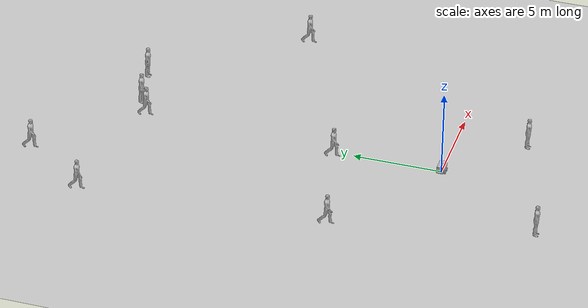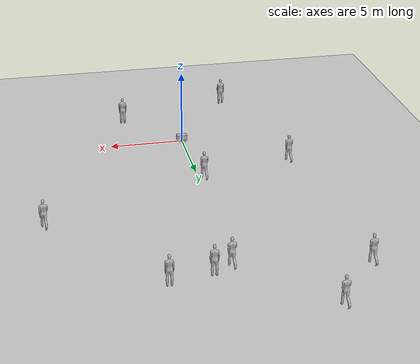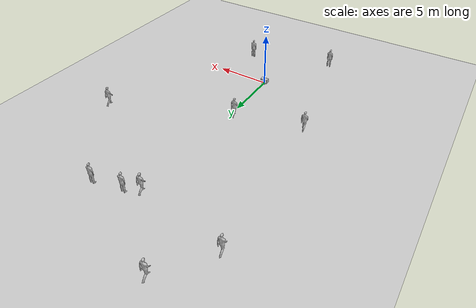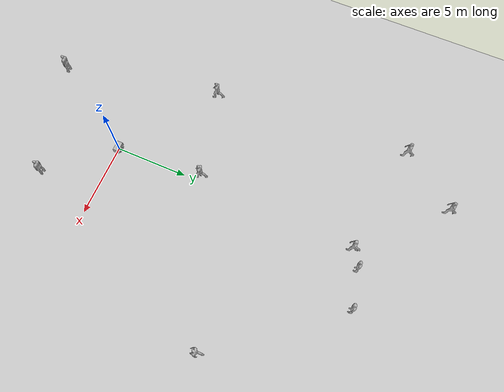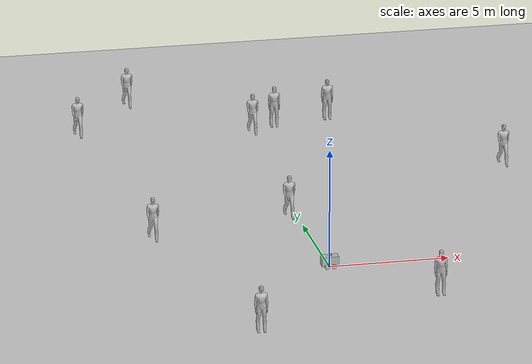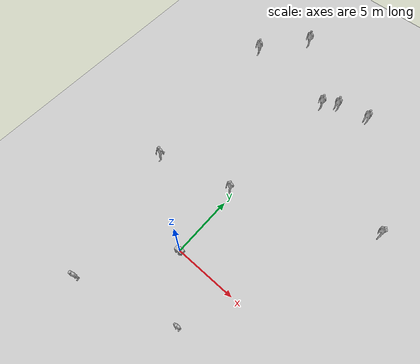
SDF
<sdf version="1.7">
 <world name="default">
  <gravity>0 0 -9.8</gravity>
  <physics name="default_physics" default="0" type="ode">
   <max_step_size>0.001</max_step_size>
   <real_time_factor>1</real_time_factor>
   <real_time_update_rate>1000</real_time_update_rate>
  </physics>
  <magnetic_field>6e-06 2.3e-05 -4.2e-05</magnetic_field>
  <atmosphere type="adiabatic"/>
  <scene><ambient>0.4 0.4 0.4 1</ambient><background>0.7 0.7 0.7 1</background><shadows>1</shadows></scene>
  <audio><device>default</device></audio>
  <spherical_coordinates>
   <surface_model>EARTH_WGS84</surface_model>
   <latitude_deg>0</latitude_deg>
   <longitude_deg>0</longitude_deg>
   <elevation>0</elevation>
   <heading_deg>0</heading_deg>
  </spherical_coordinates>
  <model name="warehouse">
   <pose>-3.23852 -1.21297 -0.460037 0 -0 0</pose>
   <link name="warehouse_base">
    <collision name="warehouse_collision">
     <geometry>
      <mesh>
       <scale>1 1 1</scale>
       <uri>/home/bo/amr_ws/src/my_first_bot/models/Warehouse/meshes/warehouse_colision.stl</uri>
      </mesh>
     </geometry>
    </collision>
    <visual name="warehouse_visual">
     <geometry>
      <mesh>
       <scale>1 1 1</scale>
       <uri>/home/bo/amr_ws/src/my_first_bot/models/Warehouse/meshes/warehouse.dae</uri>
      </mesh>
     </geometry>
    </visual>
   </link>
   <static>1</static>
  </model>
  <model name="ground_plane">
   <static>1</static>
   <link name="link">
    <collision name="collision">
     <geometry><plane><normal>0 0 1</normal><size>100 100</size></plane></geometry>
     <surface><friction><ode><mu>100</mu><mu2>50</mu2></ode></friction></surface>
    </collision>
    <visual name="visual">
     <cast_shadows>0</cast_shadows>
     <geometry><plane><normal>0 0 1</normal><size>100 100</size></plane></geometry>
     <material>
      <script><uri>file://media/materials/scripts/gazebo.material</uri><name>Gazebo/Grey</name></script>
     </material>
    </visual>
   </link>
   <pose>-2.36225 2.26229 0 0 -0 0</pose>
  </model>
  <model name="person_walking">
   <link name="link">
    <inertial>
     <pose>0 0 0.95 0 -0 0</pose>
     <mass>80</mass>
     <inertia><ixx>27.82</ixx><ixy>0</ixy><ixz>0</ixz><iyy>24.88</iyy><iyz>0</iyz><izz>4.57</izz></inertia>
    </inertial>
    <collision name="bottom">
     <pose>0 0 0.01 0 -0 0</pose>
     <geometry><box><size>0.35 0.75 0.02</size></box></geometry>
    </collision>
    <collision name="person">
     <pose>0 0 -0.02 0 -0 0</pose>
     <geometry><mesh><uri>model://person_walking/meshes/walking.dae</uri></mesh></geometry>
    </collision>
    <visual name="visual">
     <pose>0 0 -0.02 0 -0 0</pose>
     <geometry><mesh><uri>model://person_walking/meshes/walking.dae</uri></mesh></geometry>
    </visual>
   </link>
   <pose>0.373383 17.2784 -1e-06 -2e-06 -1e-06 0.000185</pose>
  </model>
  <model name="person_standing">
   <link name="link">
    <inertial>
     <pose>0 -0.1 0.95 0 -0 0</pose>
     <mass>80</mass>
     <inertia><ixx>24.88</ixx><ixy>0</ixy><ixz>0</ixz><iyy>25.73</iyy><iyz>0</iyz><izz>2.48</izz></inertia>
    </inertial>
    <collision name="bottom">
     <pose>0 -0.1 0.01 0 -0 0</pose>
     <geometry><box><size>0.5 0.35 0.02</size></box></geometry>
    </collision>
    <collision name="person">
     <pose>0 0 0.02 0.04 -0 0</pose>
     <geometry><mesh><uri>model://person_standing/meshes/standing.dae</uri></mesh></geometry>
    </collision>
    <visual name="visual">
     <pose>0 0 0.02 0.04 -0 0</pose>
     <geometry><mesh><uri>model://person_standing/meshes/standing.dae</uri></mesh></geometry>
    </visual>
   </link>
   <pose>1.51419 18.0112 -0 0 1e-06 -0.000335</pose>
  </model>
  <model name="person_standing_0">
   <link name="link">
    <inertial>
     <pose>0 -0.1 0.95 0 -0 0</pose>
     <mass>80</mass>
     <inertia><ixx>24.88</ixx><ixy>0</ixy><ixz>0</ixz><iyy>25.73</iyy><iyz>0</iyz><izz>2.48</izz></inertia>
    </inertial>
    <collision name="bottom">
     <pose>0 -0.1 0.01 0 -0 0</pose>
     <geometry><box><size>0.5 0.35 0.02</size></box></geometry>
    </collision>
    <collision name="person">
     <pose>0 0 0.02 0.04 -0 0</pose>
     <geometry><mesh><uri>model://person_standing/meshes/standing.dae</uri></mesh></geometry>
    </collision>
    <visual name="visual">
     <pose>0 0 0.02 0.04 -0 0</pose>
     <geometry><mesh><uri>model://person_standing/meshes/standing.dae</uri></mesh></geometry>
    </visual>
   </link>
   <pose>4.10861 18.5529 -0 1e-06 1e-06 -0.000124</pose>
  </model>
  <model name="person_walking_0">
   <link name="link">
    <inertial>
     <pose>0 0 0.95 0 -0 0</pose>
     <mass>80</mass>
     <inertia><ixx>27.82</ixx><ixy>0</ixy><ixz>0</ixz><iyy>24.88</iyy><iyz>0</iyz><izz>4.57</izz></inertia>
    </inertial>
    <collision name="bottom">
     <pose>0 0 0.01 0 -0 0</pose>
     <geometry><box><size>0.35 0.75 0.02</size></box></geometry>
    </collision>
    <collision name="person">
     <pose>0 0 -0.02 0 -0 0</pose>
     <geometry><mesh><uri>model://person_walking/meshes/walking.dae</uri></mesh></geometry>
    </collision>
    <visual name="visual">
     <pose>0 0 -0.02 0 -0 0</pose>
     <geometry><mesh><uri>model://person_walking/meshes/walking.dae</uri></mesh></geometry>
    </visual>
   </link>
   <pose>-7.42575 18.4808 0 -1e-06 -1e-06 0.000661</pose>
  </model>
  <model name="person_walking_1">
   <link name="link">
    <inertial>
     <pose>0 0 0.95 0 -0 0</pose>
     <mass>80</mass>
     <inertia><ixx>27.82</ixx><ixy>0</ixy><ixz>0</ixz><iyy>24.88</iyy><iyz>0</iyz><izz>4.57</izz></inertia>
    </inertial>
    <collision name="bottom">
     <pose>0 0 0.01 0 -0 0</pose>
     <geometry><box><size>0.35 0.75 0.02</size></box></geometry>
    </collision>
    <collision name="person">
     <pose>0 0 -0.02 0 -0 0</pose>
     <geometry><mesh><uri>model://person_walking/meshes/walking.dae</uri></mesh></geometry>
    </collision>
    <visual name="visual">
     <pose>0 0 -0.02 0 -0 0</pose>
     <geometry><mesh><uri>model://person_walking/meshes/walking.dae</uri></mesh></geometry>
    </visual>
   </link>
   <pose>-0.354293 6.10585 -1e-06 2e-06 -1e-06 0.00179</pose>
  </model>
  <model name="person_standing_1">
   <link name="link">
    <inertial>
     <pose>0 -0.1 0.95 0 -0 0</pose>
     <mass>80</mass>
     <inertia><ixx>24.88</ixx><ixy>0</ixy><ixz>0</ixz><iyy>25.73</iyy><iyz>0</iyz><izz>2.48</izz></inertia>
    </inertial>
    <collision name="bottom">
     <pose>0 -0.1 0.01 0 -0 0</pose>
     <geometry><box><size>0.5 0.35 0.02</size></box></geometry>
    </collision>
    <collision name="person">
     <pose>0 0 0.02 0.04 -0 0</pose>
     <geometry><mesh><uri>model://person_standing/meshes/standing.dae</uri></mesh></geometry>
    </collision>
    <visual name="visual">
     <pose>0 0 0.02 0.04 -0 0</pose>
     <geometry><mesh><uri>model://person_standing/meshes/standing.dae</uri></mesh></geometry>
    </visual>
   </link>
   <pose>-4.13513 -6.19495 -0 -1e-06 -1e-06 -0.002343</pose>
  </model>
  <model name="person_walking_2">
   <link name="link">
    <inertial>
     <pose>0 0 0.95 0 -0 0</pose>
     <mass>80</mass>
     <inertia><ixx>27.82</ixx><ixy>0</ixy><ixz>0</ixz><iyy>24.88</iyy><iyz>0</iyz><izz>4.57</izz></inertia>
    </inertial>
    <collision name="bottom">
     <pose>0 0 0.01 0 -0 0</pose>
     <geometry><box><size>0.35 0.75 0.02</size></box></geometry>
    </collision>
    <collision name="person">
     <pose>0 0 -0.02 0 -0 0</pose>
     <geometry><mesh><uri>model://person_walking/meshes/walking.dae</uri></mesh></geometry>
    </collision>
    <visual name="visual">
     <pose>0 0 -0.02 0 -0 0</pose>
     <geometry><mesh><uri>model://person_walking/meshes/walking.dae</uri></mesh></geometry>
    </visual>
   </link>
   <pose>-6.44337 4.65074 -1e-06 2e-06 -1e-06 0.000751</pose>
  </model>
  <model name="person_standing_2">
   <link name="link">
    <inertial>
     <pose>0 -0.1 0.95 0 -0 0</pose>
     <mass>80</mass>
     <inertia><ixx>24.88</ixx><ixy>0</ixy><ixz>0</ixz><iyy>25.73</iyy><iyz>0</iyz><izz>2.48</izz></inertia>
    </inertial>
    <collision name="bottom">
     <pose>0 -0.1 0.01 0 -0 0</pose>
     <geometry><box><size>0.5 0.35 0.02</size></box></geometry>
    </collision>
    <collision name="person">
     <pose>0 0 0.02 0.04 -0 0</pose>
     <geometry><mesh><uri>model://person_standing/meshes/standing.dae</uri></mesh></geometry>
    </collision>
    <visual name="visual">
     <pose>0 0 0.02 0.04 -0 0</pose>
     <geometry><mesh><uri>model://person_standing/meshes/standing.dae</uri></mesh></geometry>
    </visual>
   </link>
   <pose>3.63065 -3.8763 -0 1e-06 1e-06 0.000999</pose>
  </model>
  <model name="person_walking_3">
   <link name="link">
    <inertial>
     <pose>0 0 0.95 0 -0 0</pose>
     <mass>80</mass>
     <inertia><ixx>27.82</ixx><ixy>0</ixy><ixz>0</ixz><iyy>24.88</iyy><iyz>0</iyz><izz>4.57</izz></inertia>
    </inertial>
    <collision name="bottom">
     <pose>0 0 0.01 0 -0 0</pose>
     <geometry><box><size>0.35 0.75 0.02</size></box></geometry>
    </collision>
    <collision name="person">
     <pose>0 0 -0.02 0 -0 0</pose>
     <geometry><mesh><uri>model://person_walking/meshes/walking.dae</uri></mesh></geometry>
    </collision>
    <visual name="visual">
     <pose>0 0 -0.02 0 -0 0</pose>
     <geometry><mesh><uri>model://person_walking/meshes/walking.dae</uri></mesh></geometry>
    </visual>
   </link>
   <pose>10.2945 10.7131 0 1e-06 -0 0.000876</pose>
  </model>
  <model name="person_walking_4">
   <link name="link">
    <inertial>
     <pose>0 0 0.95 0 -0 0</pose>
     <mass>80</mass>
     <inertia><ixx>27.82</ixx><ixy>0</ixy><ixz>0</ixz><iyy>24.88</iyy><iyz>0</iyz><izz>4.57</izz></inertia>
    </inertial>
    <collision name="bottom">
     <pose>0 0 0.01 0 -0 0</pose>
     <geometry><box><size>0.35 0.75 0.02</size></box></geometry>
    </collision>
    <collision name="person">
     <pose>0 0 -0.02 0 -0 0</pose>
     <geometry><mesh><uri>model://person_walking/meshes/walking.dae</uri></mesh></geometry>
    </collision>
    <visual name="visual">
     <pose>0 0 -0.02 0 -0 0</pose>
     <geometry><mesh><uri>model://person_walking/meshes/walking.dae</uri></mesh></geometry>
    </visual>
   </link>
   <pose>-4.53788 22.2873 -1e-06 2e-06 1e-06 -0.002631</pose>
  </model>
  <light name="sun" type="directional">
   <pose>8.50524 13.8183 10 0 -0 0</pose>
   <diffuse>0.8 0.8 0.8 1</diffuse>
   <specular>0.2 0.2 0.2 1</specular>
   <attenuation>
    <range>1000</range>
    <constant>0.9</constant>
    <linear>0.01</linear>
    <quadratic>0.001</quadratic>
   </attenuation>
   <direction>-0.5 0.1 -0.9</direction>
   <spot><inner_angle>0</inner_angle><outer_angle>0</outer_angle><falloff>0</falloff></spot>
  </light>
  <model name="my_robot">
   <link name="base_footprint">
    <inertial>
     <pose>0 0 0.305366 0 -0 0</pose>
     <mass>6.15</mass>
     <inertia><ixx>0.167483</ixx><ixy>0</ixy><ixz>0</ixz><iyy>0.167483</iyy><iyz>0</iyz><izz>0.1604</izz></inertia>
    </inertial>
    <collision name="base_footprint_fixed_joint_lump__base_link_collision">
     <pose>0 0 0.3 0 -0 0</pose>
     <geometry><box><size>0.4 0.4 0.4</size></box></geometry>
    </collision>
    <collision name="base_footprint_fixed_joint_lump__lidar_link_collision_1">
     <pose>0 0 0.52 0 -0 0</pose>
     <geometry><sphere><radius>0.08</radius></sphere></geometry>
    </collision>
    <visual name="base_footprint_fixed_joint_lump__base_link_visual">
     <pose>0 0 0.3 0 -0 0</pose>
     <geometry><box><size>0.7 0.4 0.4</size></box></geometry>
    </visual>
    <visual name="base_footprint_fixed_joint_lump__lidar_link_visual_1">
     <pose>0 0 0.52 0 -0 0</pose>
     <geometry><sphere><radius>0.08</radius></sphere></geometry>
     <material>
      <script><name>Gazebo/Black</name><uri>file://media/materials/scripts/gazebo.material</uri></script>
     </material>
    </visual>
    <sensor name="imu_sensor" type="imu">
     <always_on>1</always_on>
     <update_rate>100</update_rate>
     <visualize>0</visualize>
     <plugin name="imu_plugin" filename="libgazebo_ros_imu_sensor.so">
      <ros><remapping>~/out:=imu/data</remapping></ros>
      <initial_orientation_as_reference>0</initial_orientation_as_reference>
     </plugin>
     <pose>0 0 0.3 0 -0 0</pose>
    </sensor>
    <sensor name="lidar_3d_sensor" type="gpu_ray">
     <visualize>0</visualize>
     <update_rate>10</update_rate>
     <ray>
      <scan>
       <horizontal>
        <samples>720</samples>
        <resolution>1</resolution>
        <min_angle>-3.14159</min_angle>
        <max_angle>3.14159</max_angle>
       </horizontal>
       <vertical>
        <samples>64</samples>
        <resolution>1</resolution>
        <min_angle>-0.523599</min_angle>
        <max_angle>0.785398</max_angle>
       </vertical>
      </scan>
      <range><min>0.4</min><max>12</max><resolution>0.02</resolution></range>
      <noise><type>gaussian</type><mean>0</mean><stddev>0.01</stddev></noise>
     </ray>
     <plugin name="gazebo_ros_lidar_3d" filename="libgazebo_ros_ray_sensor.so">
      <ros><remapping>~/out:=/points</remapping></ros>
      <output_type>sensor_msgs/PointCloud2</output_type>
      <frame_name>lidar_link</frame_name>
     </plugin>
     <pose>0 0 0.52 0 -0 0</pose>
    </sensor>
   </link>
   <joint name="front_left_wheel_joint" type="revolute">
    <pose relative_to="base_footprint">0.15 0.235 0.1 0 -0 0</pose>
    <parent>base_footprint</parent>
    <child>front_left_wheel</child>
    <axis>
     <xyz>0 1 0</xyz>
     <limit><lower>-1e+16</lower><upper>1e+16</upper></limit>
     <dynamics>
      <damping>0.01</damping>
      <friction>0</friction>
      <spring_reference>0</spring_reference>
      <spring_stiffness>0</spring_stiffness>
     </dynamics>
    </axis>
   </joint>
   <link name="front_left_wheel">
    <pose relative_to="front_left_wheel_joint">0 0 0 0 -0 0</pose>
    <inertial>
     <mass>0.5</mass>
     <inertia>
      <ixx>0.00135417</ixx>
      <ixy>0</ixy>
      <ixz>0</ixz>
      <iyy>0.00135417</iyy>
      <iyz>0</iyz>
      <izz>0.0025</izz>
     </inertia>
    </inertial>
    <collision name="front_left_wheel_collision">
     <pose>0 0 0 1.5708 -0 0</pose>
     <geometry><cylinder><length>0.05</length><radius>0.1</radius></cylinder></geometry>
     <surface>
      <contact><ode><kp>100000</kp><kd>50</kd><max_vel>0.1</max_vel><min_depth>0.001</min_depth></ode></contact>
      <friction><ode><mu>0.05</mu><mu2>0.05</mu2></ode></friction>
     </surface>
    </collision>
    <visual name="front_left_wheel_visual">
     <pose>0 0 0 1.5708 -0 0</pose>
     <geometry><cylinder><length>0.05</length><radius>0.1</radius></cylinder></geometry>
    </visual>
   </link>
   <joint name="front_right_wheel_joint" type="revolute">
    <pose relative_to="base_footprint">0.15 -0.235 0.1 0 -0 0</pose>
    <parent>base_footprint</parent>
    <child>front_right_wheel</child>
    <axis>
     <xyz>0 1 0</xyz>
     <limit><lower>-1e+16</lower><upper>1e+16</upper></limit>
     <dynamics>
      <damping>0.01</damping>
      <friction>0</friction>
      <spring_reference>0</spring_reference>
      <spring_stiffness>0</spring_stiffness>
     </dynamics>
    </axis>
   </joint>
   <link name="front_right_wheel">
    <pose relative_to="front_right_wheel_joint">0 0 0 0 -0 0</pose>
    <inertial>
     <mass>0.5</mass>
     <inertia>
      <ixx>0.00135417</ixx>
      <ixy>0</ixy>
      <ixz>0</ixz>
      <iyy>0.00135417</iyy>
      <iyz>0</iyz>
      <izz>0.0025</izz>
     </inertia>
    </inertial>
    <collision name="front_right_wheel_collision">
     <pose>0 0 0 1.5708 -0 0</pose>
     <geometry><cylinder><length>0.05</length><radius>0.1</radius></cylinder></geometry>
     <surface>
      <contact><ode><kp>100000</kp><kd>50</kd><max_vel>0.1</max_vel><min_depth>0.001</min_depth></ode></contact>
      <friction><ode><mu>0.05</mu><mu2>0.05</mu2></ode></friction>
     </surface>
    </collision>
    <visual name="front_right_wheel_visual">
     <pose>0 0 0 1.5708 -0 0</pose>
     <geometry><cylinder><length>0.05</length><radius>0.1</radius></cylinder></geometry>
    </visual>
   </link>
   <joint name="rear_left_wheel_joint" type="revolute">
    <pose relative_to="base_footprint">-0.15 0.235 0.1 0 -0 0</pose>
    <parent>base_footprint</parent>
    <child>rear_left_wheel</child>
    <axis>
     <xyz>0 1 0</xyz>
     <limit><lower>-1e+16</lower><upper>1e+16</upper></limit>
     <dynamics>
      <damping>0.1</damping>
      <friction>0.01</friction>
      <spring_reference>0</spring_reference>
      <spring_stiffness>0</spring_stiffness>
     </dynamics>
    </axis>
   </joint>
   <link name="rear_left_wheel">
    <pose relative_to="rear_left_wheel_joint">0 0 0 0 -0 0</pose>
    <inertial>
     <mass>0.5</mass>
     <inertia>
      <ixx>0.00135417</ixx>
      <ixy>0</ixy>
      <ixz>0</ixz>
      <iyy>0.00135417</iyy>
      <iyz>0</iyz>
      <izz>0.0025</izz>
     </inertia>
    </inertial>
    <collision name="rear_left_wheel_collision">
     <pose>0 0 0 1.5708 -0 0</pose>
     <geometry><cylinder><length>0.05</length><radius>0.1</radius></cylinder></geometry>
     <surface>
      <contact><ode><kp>100000</kp><kd>100</kd><max_vel>0.1</max_vel><min_depth>0.001</min_depth></ode></contact>
      <friction><ode><mu>2</mu><mu2>2</mu2></ode></friction>
     </surface>
    </collision>
    <visual name="rear_left_wheel_visual">
     <pose>0 0 0 1.5708 -0 0</pose>
     <geometry><cylinder><length>0.05</length><radius>0.1</radius></cylinder></geometry>
    </visual>
   </link>
   <joint name="rear_right_wheel_joint" type="revolute">
    <pose relative_to="base_footprint">-0.15 -0.235 0.1 0 -0 0</pose>
    <parent>base_footprint</parent>
    <child>rear_right_wheel</child>
    <axis>
     <xyz>0 1 0</xyz>
     <limit><lower>-1e+16</lower><upper>1e+16</upper></limit>
     <dynamics>
      <damping>0.1</damping>
      <friction>0.1</friction>
      <spring_reference>0</spring_reference>
      <spring_stiffness>0</spring_stiffness>
     </dynamics>
    </axis>
   </joint>
   <link name="rear_right_wheel">
    <pose relative_to="rear_right_wheel_joint">0 0 0 0 -0 0</pose>
    <inertial>
     <mass>0.5</mass>
     <inertia>
      <ixx>0.00135417</ixx>
      <ixy>0</ixy>
      <ixz>0</ixz>
      <iyy>0.00135417</iyy>
      <iyz>0</iyz>
      <izz>0.0025</izz>
     </inertia>
    </inertial>
    <collision name="rear_right_wheel_collision">
     <pose>0 0 0 1.5708 -0 0</pose>
     <geometry><cylinder><length>0.05</length><radius>0.1</radius></cylinder></geometry>
     <surface>
      <contact><ode><kp>100000</kp><kd>100</kd><max_vel>0.1</max_vel><min_depth>0.001</min_depth></ode></contact>
      <friction><ode><mu>2</mu><mu2>2</mu2></ode></friction>
     </surface>
    </collision>
    <visual name="rear_right_wheel_visual">
     <pose>0 0 0 1.5708 -0 0</pose>
     <geometry><cylinder><length>0.05</length><radius>0.1</radius></cylinder></geometry>
    </visual>
   </link>
   <plugin name="rear_diff_drive" filename="libgazebo_ros_diff_drive.so">
    <update_rate>100</update_rate>
    <num_wheel_pairs>1</num_wheel_pairs>
    <left_joint>rear_left_wheel_joint</left_joint>
    <right_joint>rear_right_wheel_joint</right_joint>
    <wheel_separation>0.47</wheel_separation>
    <wheel_diameter>0.2</wheel_diameter>
    <max_wheel_torque>80</max_wheel_torque>
    <max_wheel_acceleration>6</max_wheel_acceleration>
    <covariance_x>0.0001</covariance_x>
    <covariance_y>0.0001</covariance_y>
    <covariance_yaw>0.01</covariance_yaw>
    <publish_odom>1</publish_odom>
    <publish_odom_tf>0</publish_odom_tf>
    <publish_wheel_tf>0</publish_wheel_tf>
    <odometry_source>0</odometry_source>
    <odometry_frame>odom</odometry_frame>
    <robot_base_frame>base_footprint</robot_base_frame>
   </plugin>
   <static>0</static>
   <plugin name="wheel_encoder_plugin" filename="libgazebo_ros_joint_state_publisher.so">
    <update_rate>100.0</update_rate>
    <joint_name>front_left_wheel_joint</joint_name>
    <joint_name>front_right_wheel_joint</joint_name>
    <joint_name>rear_left_wheel_joint</joint_name>
    <joint_name>rear_right_wheel_joint</joint_name>
   </plugin>
   <pose>0.009181 2e-06 -0.001099 0 -0 3e-06</pose>
  </model>
 </world>
</sdf>
